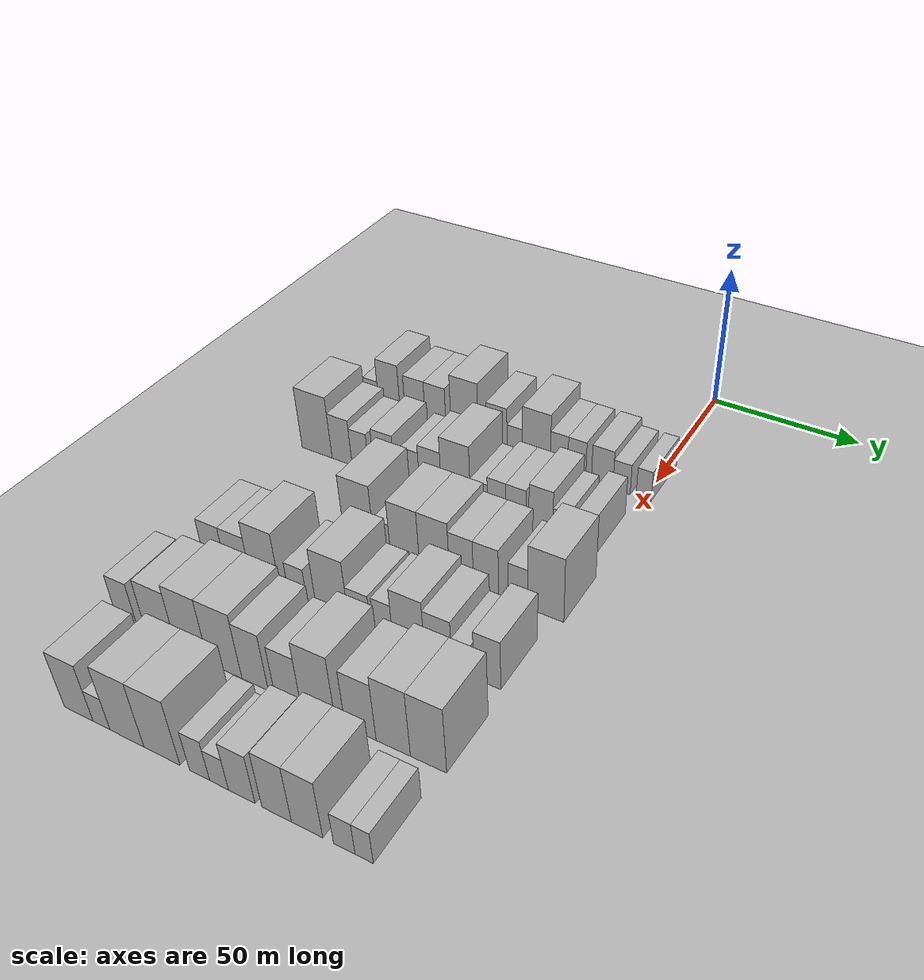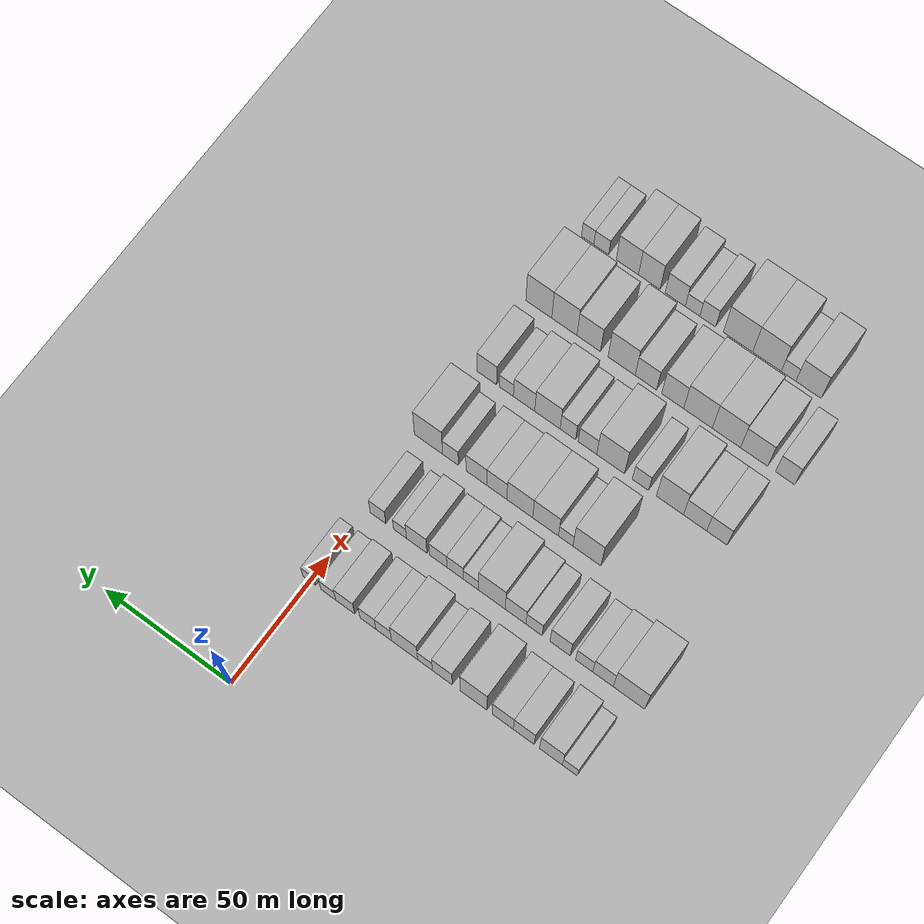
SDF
<sdf version="1.6">
 <world name="default">
  <include><name>ground_plane_1</name><uri>model://HANNAS_ground_plane</uri></include>
  <include>
   <name>ground_plane_2</name>
   <uri>model://HANNAS_ground_plane</uri>
   <pose>100 0 0  0 0 0</pose>
  </include>
  <model name="building_48">
   <static>1</static>
   <pose>50.0000 -100.1588 0 0.000000 0.000000 0.000000</pose>
   <link name="link">
    <pose>0 0 6.00 0 0 0</pose>
    <collision name="collision"><geometry><box><size>20.0000 5.5834 12.0000</size></box></geometry></collision>
    <visual name="visual">
     <cast_shadows>0</cast_shadows>
     <geometry><box><size>20.0000 5.5834 12.0000</size></box></geometry>
     <material>
      <script>
       <uri>model://HANNAS_wall/materials/scripts</uri>
       <uri>model://HANNAS_wall/materials/textures</uri>
       <name>vrc/HANNAS_wall</name>
      </script>
     </material>
    </visual>
   </link>
  </model>
  <model name="building_49">
   <static>1</static>
   <pose>50.0000 -93.0709 0 0.000000 0.000000 0.000000</pose>
   <link name="link">
    <pose>0 0 10.50 0 0 0</pose>
    <collision name="collision"><geometry><box><size>20.0000 8.5924 21.0000</size></box></geometry></collision>
    <visual name="visual">
     <cast_shadows>0</cast_shadows>
     <geometry><box><size>20.0000 8.5924 21.0000</size></box></geometry>
     <material>
      <script>
       <uri>model://HANNAS_wall/materials/scripts</uri>
       <uri>model://HANNAS_wall/materials/textures</uri>
       <name>vrc/HANNAS_wall</name>
      </script>
     </material>
    </visual>
   </link>
  </model>
  <model name="building_50">
   <static>1</static>
   <pose>50.0000 -82.8225 0 0.000000 0.000000 0.000000</pose>
   <link name="link">
    <pose>0 0 9.00 0 0 0</pose>
    <collision name="collision"><geometry><box><size>20.0000 7.9045 18.0000</size></box></geometry></collision>
    <visual name="visual">
     <cast_shadows>0</cast_shadows>
     <geometry><box><size>20.0000 7.9045 18.0000</size></box></geometry>
     <material>
      <script>
       <uri>model://HANNAS_wall/materials/scripts</uri>
       <uri>model://HANNAS_wall/materials/textures</uri>
       <name>vrc/HANNAS_wall</name>
      </script>
     </material>
    </visual>
   </link>
  </model>
  <model name="building_51">
   <static>1</static>
   <pose>50.0000 -74.8674 0 0.000000 0.000000 0.000000</pose>
   <link name="link">
    <pose>0 0 9.00 0 0 0</pose>
    <collision name="collision"><geometry><box><size>20.0000 8.0058 18.0000</size></box></geometry></collision>
    <visual name="visual">
     <cast_shadows>0</cast_shadows>
     <geometry><box><size>20.0000 8.0058 18.0000</size></box></geometry>
     <material>
      <script>
       <uri>model://HANNAS_wall/materials/scripts</uri>
       <uri>model://HANNAS_wall/materials/textures</uri>
       <name>vrc/HANNAS_wall</name>
      </script>
     </material>
    </visual>
   </link>
  </model>
  <model name="building_52">
   <static>1</static>
   <pose>50.0000 -63.7128 0 0.000000 0.000000 0.000000</pose>
   <link name="link">
    <pose>0 0 12.00 0 0 0</pose>
    <collision name="collision"><geometry><box><size>20.0000 10.3034 24.0000</size></box></geometry></collision>
    <visual name="visual">
     <cast_shadows>0</cast_shadows>
     <geometry><box><size>20.0000 10.3034 24.0000</size></box></geometry>
     <material>
      <script>
       <uri>model://HANNAS_wall/materials/scripts</uri>
       <uri>model://HANNAS_wall/materials/textures</uri>
       <name>vrc/HANNAS_wall</name>
      </script>
     </material>
    </visual>
   </link>
  </model>
  <model name="building_53">
   <static>1</static>
   <pose>50.0000 -51.7517 0 0.000000 0.000000 0.000000</pose>
   <link name="link">
    <pose>0 0 9.00 0 0 0</pose>
    <collision name="collision"><geometry><box><size>20.0000 7.6187 18.0000</size></box></geometry></collision>
    <visual name="visual">
     <cast_shadows>0</cast_shadows>
     <geometry><box><size>20.0000 7.6187 18.0000</size></box></geometry>
     <material>
      <script>
       <uri>model://HANNAS_wall/materials/scripts</uri>
       <uri>model://HANNAS_wall/materials/textures</uri>
       <name>vrc/HANNAS_wall</name>
      </script>
     </material>
    </visual>
   </link>
  </model>
  <model name="building_54">
   <static>1</static>
   <pose>50.0000 -45.1060 0 0.000000 0.000000 0.000000</pose>
   <link name="link">
    <pose>0 0 6.00 0 0 0</pose>
    <collision name="collision"><geometry><box><size>20.0000 5.6728 12.0000</size></box></geometry></collision>
    <visual name="visual">
     <cast_shadows>0</cast_shadows>
     <geometry><box><size>20.0000 5.6728 12.0000</size></box></geometry>
     <material>
      <script>
       <uri>model://HANNAS_wall/materials/scripts</uri>
       <uri>model://HANNAS_wall/materials/textures</uri>
       <name>vrc/HANNAS_wall</name>
      </script>
     </material>
    </visual>
   </link>
  </model>
  <model name="building_55">
   <static>1</static>
   <pose>50.0000 -37.2330 0 0.000000 0.000000 0.000000</pose>
   <link name="link">
    <pose>0 0 10.50 0 0 0</pose>
    <collision name="collision"><geometry><box><size>20.0000 10.0730 21.0000</size></box></geometry></collision>
    <visual name="visual">
     <cast_shadows>0</cast_shadows>
     <geometry><box><size>20.0000 10.0730 21.0000</size></box></geometry>
     <material>
      <script>
       <uri>model://HANNAS_wall/materials/scripts</uri>
       <uri>model://HANNAS_wall/materials/textures</uri>
       <name>vrc/HANNAS_wall</name>
      </script>
     </material>
    </visual>
   </link>
  </model>
  <model name="building_56">
   <static>1</static>
   <pose>50.0000 -29.1370 0 0.000000 0.000000 0.000000</pose>
   <link name="link">
    <pose>0 0 7.50 0 0 0</pose>
    <collision name="collision"><geometry><box><size>20.0000 6.1190 15.0000</size></box></geometry></collision>
    <visual name="visual">
     <cast_shadows>0</cast_shadows>
     <geometry><box><size>20.0000 6.1190 15.0000</size></box></geometry>
     <material>
      <script>
       <uri>model://HANNAS_wall/materials/scripts</uri>
       <uri>model://HANNAS_wall/materials/textures</uri>
       <name>vrc/HANNAS_wall</name>
      </script>
     </material>
    </visual>
   </link>
  </model>
  <model name="building_57">
   <static>1</static>
   <pose>50.0000 -22.9359 0 0.000000 0.000000 0.000000</pose>
   <link name="link">
    <pose>0 0 7.50 0 0 0</pose>
    <collision name="collision"><geometry><box><size>20.0000 6.2833 15.0000</size></box></geometry></collision>
    <visual name="visual">
     <cast_shadows>0</cast_shadows>
     <geometry><box><size>20.0000 6.2833 15.0000</size></box></geometry>
     <material>
      <script>
       <uri>model://HANNAS_wall/materials/scripts</uri>
       <uri>model://HANNAS_wall/materials/textures</uri>
       <name>vrc/HANNAS_wall</name>
      </script>
     </material>
    </visual>
   </link>
  </model>
  <model name="building_58">
   <static>1</static>
   <pose>50.0000 -14.0874 0 0.000000 0.000000 0.000000</pose>
   <link name="link">
    <pose>0 0 7.50 0 0 0</pose>
    <collision name="collision"><geometry><box><size>20.0000 7.4137 15.0000</size></box></geometry></collision>
    <visual name="visual">
     <cast_shadows>0</cast_shadows>
     <geometry><box><size>20.0000 7.4137 15.0000</size></box></geometry>
     <material>
      <script>
       <uri>model://HANNAS_wall/materials/scripts</uri>
       <uri>model://HANNAS_wall/materials/textures</uri>
       <name>vrc/HANNAS_wall</name>
      </script>
     </material>
    </visual>
   </link>
  </model>
  <model name="building_59">
   <static>1</static>
   <pose>50.0000 -7.4353 0 0.000000 0.000000 0.000000</pose>
   <link name="link">
    <pose>0 0 6.00 0 0 0</pose>
    <collision name="collision"><geometry><box><size>20.0000 5.8906 12.0000</size></box></geometry></collision>
    <visual name="visual">
     <cast_shadows>0</cast_shadows>
     <geometry><box><size>20.0000 5.8906 12.0000</size></box></geometry>
     <material>
      <script>
       <uri>model://HANNAS_wall/materials/scripts</uri>
       <uri>model://HANNAS_wall/materials/textures</uri>
       <name>vrc/HANNAS_wall</name>
      </script>
     </material>
    </visual>
   </link>
  </model>
  <model name="building_60">
   <static>1</static>
   <pose>50.0000 0.0227 0 0.000000 0.000000 0.000000</pose>
   <link name="link">
    <pose>0 0 6.00 0 0 0</pose>
    <collision name="collision"><geometry><box><size>20.0000 5.0254 12.0000</size></box></geometry></collision>
    <visual name="visual">
     <cast_shadows>0</cast_shadows>
     <geometry><box><size>20.0000 5.0254 12.0000</size></box></geometry>
     <material>
      <script>
       <uri>model://HANNAS_wall/materials/scripts</uri>
       <uri>model://HANNAS_wall/materials/textures</uri>
       <name>vrc/HANNAS_wall</name>
      </script>
     </material>
    </visual>
   </link>
  </model>
  <model name="building_163">
   <static>1</static>
   <pose>79.0000 -101.8950 0 0.000000 0.000000 0.000000</pose>
   <link name="link">
    <pose>0 0 12.00 0 0 0</pose>
    <collision name="collision"><geometry><box><size>20.0000 11.8603 24.0000</size></box></geometry></collision>
    <visual name="visual">
     <cast_shadows>0</cast_shadows>
     <geometry><box><size>20.0000 11.8603 24.0000</size></box></geometry>
     <material>
      <script>
       <uri>model://HANNAS_wall/materials/scripts</uri>
       <uri>model://HANNAS_wall/materials/textures</uri>
       <name>vrc/HANNAS_wall</name>
      </script>
     </material>
    </visual>
   </link>
  </model>
  <model name="building_164">
   <static>1</static>
   <pose>79.0000 -92.0670 0 0.000000 0.000000 0.000000</pose>
   <link name="link">
    <pose>0 0 9.00 0 0 0</pose>
    <collision name="collision"><geometry><box><size>20.0000 7.7956 18.0000</size></box></geometry></collision>
    <visual name="visual">
     <cast_shadows>0</cast_shadows>
     <geometry><box><size>20.0000 7.7956 18.0000</size></box></geometry>
     <material>
      <script>
       <uri>model://HANNAS_wall/materials/scripts</uri>
       <uri>model://HANNAS_wall/materials/textures</uri>
       <name>vrc/HANNAS_wall</name>
      </script>
     </material>
    </visual>
   </link>
  </model>
  <model name="building_165">
   <static>1</static>
   <pose>79.0000 -84.9122 0 0.000000 0.000000 0.000000</pose>
   <link name="link">
    <pose>0 0 7.50 0 0 0</pose>
    <collision name="collision"><geometry><box><size>20.0000 6.5140 15.0000</size></box></geometry></collision>
    <visual name="visual">
     <cast_shadows>0</cast_shadows>
     <geometry><box><size>20.0000 6.5140 15.0000</size></box></geometry>
     <material>
      <script>
       <uri>model://HANNAS_wall/materials/scripts</uri>
       <uri>model://HANNAS_wall/materials/textures</uri>
       <name>vrc/HANNAS_wall</name>
      </script>
     </material>
    </visual>
   </link>
  </model>
  <model name="building_166">
   <static>1</static>
   <pose>79.0000 -75.7726 0 0.000000 0.000000 0.000000</pose>
   <link name="link">
    <pose>0 0 9.00 0 0 0</pose>
    <collision name="collision"><geometry><box><size>20.0000 7.7652 18.0000</size></box></geometry></collision>
    <visual name="visual">
     <cast_shadows>0</cast_shadows>
     <geometry><box><size>20.0000 7.7652 18.0000</size></box></geometry>
     <material>
      <script>
       <uri>model://HANNAS_wall/materials/scripts</uri>
       <uri>model://HANNAS_wall/materials/textures</uri>
       <name>vrc/HANNAS_wall</name>
      </script>
     </material>
    </visual>
   </link>
  </model>
  <model name="building_167">
   <static>1</static>
   <pose>79.0000 -65.7779 0 0.000000 0.000000 0.000000</pose>
   <link name="link">
    <pose>0 0 7.50 0 0 0</pose>
    <collision name="collision"><geometry><box><size>20.0000 6.2242 15.0000</size></box></geometry></collision>
    <visual name="visual">
     <cast_shadows>0</cast_shadows>
     <geometry><box><size>20.0000 6.2242 15.0000</size></box></geometry>
     <material>
      <script>
       <uri>model://HANNAS_wall/materials/scripts</uri>
       <uri>model://HANNAS_wall/materials/textures</uri>
       <name>vrc/HANNAS_wall</name>
      </script>
     </material>
    </visual>
   </link>
  </model>
  <model name="building_168">
   <static>1</static>
   <pose>79.0000 -58.6753 0 0.000000 0.000000 0.000000</pose>
   <link name="link">
    <pose>0 0 9.00 0 0 0</pose>
    <collision name="collision"><geometry><box><size>20.0000 7.9810 18.0000</size></box></geometry></collision>
    <visual name="visual">
     <cast_shadows>0</cast_shadows>
     <geometry><box><size>20.0000 7.9810 18.0000</size></box></geometry>
     <material>
      <script>
       <uri>model://HANNAS_wall/materials/scripts</uri>
       <uri>model://HANNAS_wall/materials/textures</uri>
       <name>vrc/HANNAS_wall</name>
      </script>
     </material>
    </visual>
   </link>
  </model>
  <model name="building_169">
   <static>1</static>
   <pose>79.0000 -49.5389 0 0.000000 0.000000 0.000000</pose>
   <link name="link">
    <pose>0 0 12.00 0 0 0</pose>
    <collision name="collision"><geometry><box><size>20.0000 10.2919 24.0000</size></box></geometry></collision>
    <visual name="visual">
     <cast_shadows>0</cast_shadows>
     <geometry><box><size>20.0000 10.2919 24.0000</size></box></geometry>
     <material>
      <script>
       <uri>model://HANNAS_wall/materials/scripts</uri>
       <uri>model://HANNAS_wall/materials/textures</uri>
       <name>vrc/HANNAS_wall</name>
      </script>
     </material>
    </visual>
   </link>
  </model>
  <model name="building_170">
   <static>1</static>
   <pose>79.0000 -41.3933 0 0.000000 0.000000 0.000000</pose>
   <link name="link">
    <pose>0 0 6.00 0 0 0</pose>
    <collision name="collision"><geometry><box><size>20.0000 5.9991 12.0000</size></box></geometry></collision>
    <visual name="visual">
     <cast_shadows>0</cast_shadows>
     <geometry><box><size>20.0000 5.9991 12.0000</size></box></geometry>
     <material>
      <script>
       <uri>model://HANNAS_wall/materials/scripts</uri>
       <uri>model://HANNAS_wall/materials/textures</uri>
       <name>vrc/HANNAS_wall</name>
      </script>
     </material>
    </visual>
   </link>
  </model>
  <model name="building_171">
   <static>1</static>
   <pose>79.0000 -35.2212 0 0.000000 0.000000 0.000000</pose>
   <link name="link">
    <pose>0 0 7.50 0 0 0</pose>
    <collision name="collision"><geometry><box><size>20.0000 6.3452 15.0000</size></box></geometry></collision>
    <visual name="visual">
     <cast_shadows>0</cast_shadows>
     <geometry><box><size>20.0000 6.3452 15.0000</size></box></geometry>
     <material>
      <script>
       <uri>model://HANNAS_wall/materials/scripts</uri>
       <uri>model://HANNAS_wall/materials/textures</uri>
       <name>vrc/HANNAS_wall</name>
      </script>
     </material>
    </visual>
   </link>
  </model>
  <model name="building_172">
   <static>1</static>
   <pose>79.0000 -28.6570 0 0.000000 0.000000 0.000000</pose>
   <link name="link">
    <pose>0 0 7.50 0 0 0</pose>
    <collision name="collision"><geometry><box><size>20.0000 6.7831 15.0000</size></box></geometry></collision>
    <visual name="visual">
     <cast_shadows>0</cast_shadows>
     <geometry><box><size>20.0000 6.7831 15.0000</size></box></geometry>
     <material>
      <script>
       <uri>model://HANNAS_wall/materials/scripts</uri>
       <uri>model://HANNAS_wall/materials/textures</uri>
       <name>vrc/HANNAS_wall</name>
      </script>
     </material>
    </visual>
   </link>
  </model>
  <model name="building_173">
   <static>1</static>
   <pose>79.0000 -20.2485 0 0.000000 0.000000 0.000000</pose>
   <link name="link">
    <pose>0 0 9.00 0 0 0</pose>
    <collision name="collision"><geometry><box><size>20.0000 8.0341 18.0000</size></box></geometry></collision>
    <visual name="visual">
     <cast_shadows>0</cast_shadows>
     <geometry><box><size>20.0000 8.0341 18.0000</size></box></geometry>
     <material>
      <script>
       <uri>model://HANNAS_wall/materials/scripts</uri>
       <uri>model://HANNAS_wall/materials/textures</uri>
       <name>vrc/HANNAS_wall</name>
      </script>
     </material>
    </visual>
   </link>
  </model>
  <model name="building_174">
   <static>1</static>
   <pose>79.0000 -13.6729 0 0.000000 0.000000 0.000000</pose>
   <link name="link">
    <pose>0 0 6.00 0 0 0</pose>
    <collision name="collision"><geometry><box><size>20.0000 5.1171 12.0000</size></box></geometry></collision>
    <visual name="visual">
     <cast_shadows>0</cast_shadows>
     <geometry><box><size>20.0000 5.1171 12.0000</size></box></geometry>
     <material>
      <script>
       <uri>model://HANNAS_wall/materials/scripts</uri>
       <uri>model://HANNAS_wall/materials/textures</uri>
       <name>vrc/HANNAS_wall</name>
      </script>
     </material>
    </visual>
   </link>
  </model>
  <model name="building_175">
   <static>1</static>
   <pose>79.0000 -5.0325 0 0.000000 0.000000 0.000000</pose>
   <link name="link">
    <pose>0 0 7.50 0 0 0</pose>
    <collision name="collision"><geometry><box><size>20.0000 6.1637 15.0000</size></box></geometry></collision>
    <visual name="visual">
     <cast_shadows>0</cast_shadows>
     <geometry><box><size>20.0000 6.1637 15.0000</size></box></geometry>
     <material>
      <script>
       <uri>model://HANNAS_wall/materials/scripts</uri>
       <uri>model://HANNAS_wall/materials/textures</uri>
       <name>vrc/HANNAS_wall</name>
      </script>
     </material>
    </visual>
   </link>
  </model>
  <model name="building_269">
   <static>1</static>
   <pose>108.0000 -65.3028 0 0.000000 0.000000 0.000000</pose>
   <link name="link">
    <pose>0 0 12.00 0 0 0</pose>
    <collision name="collision"><geometry><box><size>20.0000 10.7787 24.0000</size></box></geometry></collision>
    <visual name="visual">
     <cast_shadows>0</cast_shadows>
     <geometry><box><size>20.0000 10.7787 24.0000</size></box></geometry>
     <material>
      <script>
       <uri>model://HANNAS_wall/materials/scripts</uri>
       <uri>model://HANNAS_wall/materials/textures</uri>
       <name>vrc/HANNAS_wall</name>
      </script>
     </material>
    </visual>
   </link>
  </model>
  <model name="building_270">
   <static>1</static>
   <pose>108.0000 -57.1104 0 0.000000 0.000000 0.000000</pose>
   <link name="link">
    <pose>0 0 6.00 0 0 0</pose>
    <collision name="collision"><geometry><box><size>20.0000 5.6061 12.0000</size></box></geometry></collision>
    <visual name="visual">
     <cast_shadows>0</cast_shadows>
     <geometry><box><size>20.0000 5.6061 12.0000</size></box></geometry>
     <material>
      <script>
       <uri>model://HANNAS_wall/materials/scripts</uri>
       <uri>model://HANNAS_wall/materials/textures</uri>
       <name>vrc/HANNAS_wall</name>
      </script>
     </material>
    </visual>
   </link>
  </model>
  <model name="building_271">
   <static>1</static>
   <pose>108.0000 -49.3049 0 0.000000 0.000000 0.000000</pose>
   <link name="link">
    <pose>0 0 10.50 0 0 0</pose>
    <collision name="collision"><geometry><box><size>20.0000 10.0048 21.0000</size></box></geometry></collision>
    <visual name="visual">
     <cast_shadows>0</cast_shadows>
     <geometry><box><size>20.0000 10.0048 21.0000</size></box></geometry>
     <material>
      <script>
       <uri>model://HANNAS_wall/materials/scripts</uri>
       <uri>model://HANNAS_wall/materials/textures</uri>
       <name>vrc/HANNAS_wall</name>
      </script>
     </material>
    </visual>
   </link>
  </model>
  <model name="building_272">
   <static>1</static>
   <pose>108.0000 -39.2423 0 0.000000 0.000000 0.000000</pose>
   <link name="link">
    <pose>0 0 10.50 0 0 0</pose>
    <collision name="collision"><geometry><box><size>20.0000 10.1203 21.0000</size></box></geometry></collision>
    <visual name="visual">
     <cast_shadows>0</cast_shadows>
     <geometry><box><size>20.0000 10.1203 21.0000</size></box></geometry>
     <material>
      <script>
       <uri>model://HANNAS_wall/materials/scripts</uri>
       <uri>model://HANNAS_wall/materials/textures</uri>
       <name>vrc/HANNAS_wall</name>
      </script>
     </material>
    </visual>
   </link>
  </model>
  <model name="building_273">
   <static>1</static>
   <pose>108.0000 -30.2172 0 0.000000 0.000000 0.000000</pose>
   <link name="link">
    <pose>0 0 9.00 0 0 0</pose>
    <collision name="collision"><geometry><box><size>20.0000 7.9299 18.0000</size></box></geometry></collision>
    <visual name="visual">
     <cast_shadows>0</cast_shadows>
     <geometry><box><size>20.0000 7.9299 18.0000</size></box></geometry>
     <material>
      <script>
       <uri>model://HANNAS_wall/materials/scripts</uri>
       <uri>model://HANNAS_wall/materials/textures</uri>
       <name>vrc/HANNAS_wall</name>
      </script>
     </material>
    </visual>
   </link>
  </model>
  <model name="building_274">
   <static>1</static>
   <pose>108.0000 -22.1798 0 0.000000 0.000000 0.000000</pose>
   <link name="link">
    <pose>0 0 9.00 0 0 0</pose>
    <collision name="collision"><geometry><box><size>20.0000 8.1447 18.0000</size></box></geometry></collision>
    <visual name="visual">
     <cast_shadows>0</cast_shadows>
     <geometry><box><size>20.0000 8.1447 18.0000</size></box></geometry>
     <material>
      <script>
       <uri>model://HANNAS_wall/materials/scripts</uri>
       <uri>model://HANNAS_wall/materials/textures</uri>
       <name>vrc/HANNAS_wall</name>
      </script>
     </material>
    </visual>
   </link>
  </model>
  <model name="building_275">
   <static>1</static>
   <pose>108.0000 -11.9690 0 0.000000 0.000000 0.000000</pose>
   <link name="link">
    <pose>0 0 7.50 0 0 0</pose>
    <collision name="collision"><geometry><box><size>20.0000 6.2770 15.0000</size></box></geometry></collision>
    <visual name="visual">
     <cast_shadows>0</cast_shadows>
     <geometry><box><size>20.0000 6.2770 15.0000</size></box></geometry>
     <material>
      <script>
       <uri>model://HANNAS_wall/materials/scripts</uri>
       <uri>model://HANNAS_wall/materials/textures</uri>
       <name>vrc/HANNAS_wall</name>
      </script>
     </material>
    </visual>
   </link>
  </model>
  <model name="building_276">
   <static>1</static>
   <pose>108.0000 -3.2616 0 0.000000 0.000000 0.000000</pose>
   <link name="link">
    <pose>0 0 12.00 0 0 0</pose>
    <collision name="collision"><geometry><box><size>20.0000 11.1378 24.0000</size></box></geometry></collision>
    <visual name="visual">
     <cast_shadows>0</cast_shadows>
     <geometry><box><size>20.0000 11.1378 24.0000</size></box></geometry>
     <material>
      <script>
       <uri>model://HANNAS_wall/materials/scripts</uri>
       <uri>model://HANNAS_wall/materials/textures</uri>
       <name>vrc/HANNAS_wall</name>
      </script>
     </material>
    </visual>
   </link>
  </model>
  <model name="building_378">
   <static>1</static>
   <pose>137.0000 -94.9725 0 0.000000 0.000000 0.000000</pose>
   <link name="link">
    <pose>0 0 9.00 0 0 0</pose>
    <collision name="collision"><geometry><box><size>20.0000 7.8466 18.0000</size></box></geometry></collision>
    <visual name="visual">
     <cast_shadows>0</cast_shadows>
     <geometry><box><size>20.0000 7.8466 18.0000</size></box></geometry>
     <material>
      <script>
       <uri>model://HANNAS_wall/materials/scripts</uri>
       <uri>model://HANNAS_wall/materials/textures</uri>
       <name>vrc/HANNAS_wall</name>
      </script>
     </material>
    </visual>
   </link>
  </model>
  <model name="building_379">
   <static>1</static>
   <pose>137.0000 -86.5911 0 0.000000 0.000000 0.000000</pose>
   <link name="link">
    <pose>0 0 9.00 0 0 0</pose>
    <collision name="collision"><geometry><box><size>20.0000 8.9162 18.0000</size></box></geometry></collision>
    <visual name="visual">
     <cast_shadows>0</cast_shadows>
     <geometry><box><size>20.0000 8.9162 18.0000</size></box></geometry>
     <material>
      <script>
       <uri>model://HANNAS_wall/materials/scripts</uri>
       <uri>model://HANNAS_wall/materials/textures</uri>
       <name>vrc/HANNAS_wall</name>
      </script>
     </material>
    </visual>
   </link>
  </model>
  <model name="building_380">
   <static>1</static>
   <pose>137.0000 -76.9125 0 0.000000 0.000000 0.000000</pose>
   <link name="link">
    <pose>0 0 12.00 0 0 0</pose>
    <collision name="collision"><geometry><box><size>20.0000 10.4410 24.0000</size></box></geometry></collision>
    <visual name="visual">
     <cast_shadows>0</cast_shadows>
     <geometry><box><size>20.0000 10.4410 24.0000</size></box></geometry>
     <material>
      <script>
       <uri>model://HANNAS_wall/materials/scripts</uri>
       <uri>model://HANNAS_wall/materials/textures</uri>
       <name>vrc/HANNAS_wall</name>
      </script>
     </material>
    </visual>
   </link>
  </model>
  <model name="building_381">
   <static>1</static>
   <pose>137.0000 -65.5252 0 0.000000 0.000000 0.000000</pose>
   <link name="link">
    <pose>0 0 7.50 0 0 0</pose>
    <collision name="collision"><geometry><box><size>20.0000 6.3335 15.0000</size></box></geometry></collision>
    <visual name="visual">
     <cast_shadows>0</cast_shadows>
     <geometry><box><size>20.0000 6.3335 15.0000</size></box></geometry>
     <material>
      <script>
       <uri>model://HANNAS_wall/materials/scripts</uri>
       <uri>model://HANNAS_wall/materials/textures</uri>
       <name>vrc/HANNAS_wall</name>
      </script>
     </material>
    </visual>
   </link>
  </model>
  <model name="building_382">
   <static>1</static>
   <pose>137.0000 -53.9409 0 0.000000 0.000000 0.000000</pose>
   <link name="link">
    <pose>0 0 12.00 0 0 0</pose>
    <collision name="collision"><geometry><box><size>20.0000 10.8350 24.0000</size></box></geometry></collision>
    <visual name="visual">
     <cast_shadows>0</cast_shadows>
     <geometry><box><size>20.0000 10.8350 24.0000</size></box></geometry>
     <material>
      <script>
       <uri>model://HANNAS_wall/materials/scripts</uri>
       <uri>model://HANNAS_wall/materials/textures</uri>
       <name>vrc/HANNAS_wall</name>
      </script>
     </material>
    </visual>
   </link>
  </model>
  <model name="building_383">
   <static>1</static>
   <pose>137.0000 -44.8855 0 0.000000 0.000000 0.000000</pose>
   <link name="link">
    <pose>0 0 7.50 0 0 0</pose>
    <collision name="collision"><geometry><box><size>20.0000 7.2759 15.0000</size></box></geometry></collision>
    <visual name="visual">
     <cast_shadows>0</cast_shadows>
     <geometry><box><size>20.0000 7.2759 15.0000</size></box></geometry>
     <material>
      <script>
       <uri>model://HANNAS_wall/materials/scripts</uri>
       <uri>model://HANNAS_wall/materials/textures</uri>
       <name>vrc/HANNAS_wall</name>
      </script>
     </material>
    </visual>
   </link>
  </model>
  <model name="building_384">
   <static>1</static>
   <pose>137.0000 -37.2133 0 0.000000 0.000000 0.000000</pose>
   <link name="link">
    <pose>0 0 7.50 0 0 0</pose>
    <collision name="collision"><geometry><box><size>20.0000 6.0686 15.0000</size></box></geometry></collision>
    <visual name="visual">
     <cast_shadows>0</cast_shadows>
     <geometry><box><size>20.0000 6.0686 15.0000</size></box></geometry>
     <material>
      <script>
       <uri>model://HANNAS_wall/materials/scripts</uri>
       <uri>model://HANNAS_wall/materials/textures</uri>
       <name>vrc/HANNAS_wall</name>
      </script>
     </material>
    </visual>
   </link>
  </model>
  <model name="building_385">
   <static>1</static>
   <pose>137.0000 -29.1659 0 0.000000 0.000000 0.000000</pose>
   <link name="link">
    <pose>0 0 10.50 0 0 0</pose>
    <collision name="collision"><geometry><box><size>20.0000 10.0261 21.0000</size></box></geometry></collision>
    <visual name="visual">
     <cast_shadows>0</cast_shadows>
     <geometry><box><size>20.0000 10.0261 21.0000</size></box></geometry>
     <material>
      <script>
       <uri>model://HANNAS_wall/materials/scripts</uri>
       <uri>model://HANNAS_wall/materials/textures</uri>
       <name>vrc/HANNAS_wall</name>
      </script>
     </material>
    </visual>
   </link>
  </model>
  <model name="building_386">
   <static>1</static>
   <pose>137.0000 -19.9301 0 0.000000 0.000000 0.000000</pose>
   <link name="link">
    <pose>0 0 9.00 0 0 0</pose>
    <collision name="collision"><geometry><box><size>20.0000 8.4456 18.0000</size></box></geometry></collision>
    <visual name="visual">
     <cast_shadows>0</cast_shadows>
     <geometry><box><size>20.0000 8.4456 18.0000</size></box></geometry>
     <material>
      <script>
       <uri>model://HANNAS_wall/materials/scripts</uri>
       <uri>model://HANNAS_wall/materials/textures</uri>
       <name>vrc/HANNAS_wall</name>
      </script>
     </material>
    </visual>
   </link>
  </model>
  <model name="building_387">
   <static>1</static>
   <pose>137.0000 -12.8511 0 0.000000 0.000000 0.000000</pose>
   <link name="link">
    <pose>0 0 6.00 0 0 0</pose>
    <collision name="collision"><geometry><box><size>20.0000 5.7123 12.0000</size></box></geometry></collision>
    <visual name="visual">
     <cast_shadows>0</cast_shadows>
     <geometry><box><size>20.0000 5.7123 12.0000</size></box></geometry>
     <material>
      <script>
       <uri>model://HANNAS_wall/materials/scripts</uri>
       <uri>model://HANNAS_wall/materials/textures</uri>
       <name>vrc/HANNAS_wall</name>
      </script>
     </material>
    </visual>
   </link>
  </model>
  <model name="building_388">
   <static>1</static>
   <pose>137.0000 -5.0248 0 0.000000 0.000000 0.000000</pose>
   <link name="link">
    <pose>0 0 9.00 0 0 0</pose>
    <collision name="collision"><geometry><box><size>20.0000 7.9403 18.0000</size></box></geometry></collision>
    <visual name="visual">
     <cast_shadows>0</cast_shadows>
     <geometry><box><size>20.0000 7.9403 18.0000</size></box></geometry>
     <material>
      <script>
       <uri>model://HANNAS_wall/materials/scripts</uri>
       <uri>model://HANNAS_wall/materials/textures</uri>
       <name>vrc/HANNAS_wall</name>
      </script>
     </material>
    </visual>
   </link>
  </model>
  <model name="building_491">
   <static>1</static>
   <pose>166.0000 -101.3327 0 0.000000 0.000000 0.000000</pose>
   <link name="link">
    <pose>0 0 9.00 0 0 0</pose>
    <collision name="collision"><geometry><box><size>20.0000 7.3626 18.0000</size></box></geometry></collision>
    <visual name="visual">
     <cast_shadows>0</cast_shadows>
     <geometry><box><size>20.0000 7.3626 18.0000</size></box></geometry>
     <material>
      <script>
       <uri>model://HANNAS_wall/materials/scripts</uri>
       <uri>model://HANNAS_wall/materials/textures</uri>
       <name>vrc/HANNAS_wall</name>
      </script>
     </material>
    </visual>
   </link>
  </model>
  <model name="building_492">
   <static>1</static>
   <pose>166.0000 -89.4224 0 0.000000 0.000000 0.000000</pose>
   <link name="link">
    <pose>0 0 10.50 0 0 0</pose>
    <collision name="collision"><geometry><box><size>20.0000 10.4581 21.0000</size></box></geometry></collision>
    <visual name="visual">
     <cast_shadows>0</cast_shadows>
     <geometry><box><size>20.0000 10.4581 21.0000</size></box></geometry>
     <material>
      <script>
       <uri>model://HANNAS_wall/materials/scripts</uri>
       <uri>model://HANNAS_wall/materials/textures</uri>
       <name>vrc/HANNAS_wall</name>
      </script>
     </material>
    </visual>
   </link>
  </model>
  <model name="building_493">
   <static>1</static>
   <pose>166.0000 -78.7296 0 0.000000 0.000000 0.000000</pose>
   <link name="link">
    <pose>0 0 12.00 0 0 0</pose>
    <collision name="collision"><geometry><box><size>20.0000 10.9273 24.0000</size></box></geometry></collision>
    <visual name="visual">
     <cast_shadows>0</cast_shadows>
     <geometry><box><size>20.0000 10.9273 24.0000</size></box></geometry>
     <material>
      <script>
       <uri>model://HANNAS_wall/materials/scripts</uri>
       <uri>model://HANNAS_wall/materials/textures</uri>
       <name>vrc/HANNAS_wall</name>
      </script>
     </material>
    </visual>
   </link>
  </model>
  <model name="building_494">
   <static>1</static>
   <pose>166.0000 -67.6883 0 0.000000 0.000000 0.000000</pose>
   <link name="link">
    <pose>0 0 12.00 0 0 0</pose>
    <collision name="collision"><geometry><box><size>20.0000 11.1554 24.0000</size></box></geometry></collision>
    <visual name="visual">
     <cast_shadows>0</cast_shadows>
     <geometry><box><size>20.0000 11.1554 24.0000</size></box></geometry>
     <material>
      <script>
       <uri>model://HANNAS_wall/materials/scripts</uri>
       <uri>model://HANNAS_wall/materials/textures</uri>
       <name>vrc/HANNAS_wall</name>
      </script>
     </material>
    </visual>
   </link>
  </model>
  <model name="building_495">
   <static>1</static>
   <pose>166.0000 -57.8158 0 0.000000 0.000000 0.000000</pose>
   <link name="link">
    <pose>0 0 10.50 0 0 0</pose>
    <collision name="collision"><geometry><box><size>20.0000 8.5896 21.0000</size></box></geometry></collision>
    <visual name="visual">
     <cast_shadows>0</cast_shadows>
     <geometry><box><size>20.0000 8.5896 21.0000</size></box></geometry>
     <material>
      <script>
       <uri>model://HANNAS_wall/materials/scripts</uri>
       <uri>model://HANNAS_wall/materials/textures</uri>
       <name>vrc/HANNAS_wall</name>
      </script>
     </material>
    </visual>
   </link>
  </model>
  <model name="building_496">
   <static>1</static>
   <pose>166.0000 -47.3326 0 0.000000 0.000000 0.000000</pose>
   <link name="link">
    <pose>0 0 9.00 0 0 0</pose>
    <collision name="collision"><geometry><box><size>20.0000 8.3768 18.0000</size></box></geometry></collision>
    <visual name="visual">
     <cast_shadows>0</cast_shadows>
     <geometry><box><size>20.0000 8.3768 18.0000</size></box></geometry>
     <material>
      <script>
       <uri>model://HANNAS_wall/materials/scripts</uri>
       <uri>model://HANNAS_wall/materials/textures</uri>
       <name>vrc/HANNAS_wall</name>
      </script>
     </material>
    </visual>
   </link>
  </model>
  <model name="building_497">
   <static>1</static>
   <pose>166.0000 -37.7788 0 0.000000 0.000000 0.000000</pose>
   <link name="link">
    <pose>0 0 12.00 0 0 0</pose>
    <collision name="collision"><geometry><box><size>20.0000 10.7309 24.0000</size></box></geometry></collision>
    <visual name="visual">
     <cast_shadows>0</cast_shadows>
     <geometry><box><size>20.0000 10.7309 24.0000</size></box></geometry>
     <material>
      <script>
       <uri>model://HANNAS_wall/materials/scripts</uri>
       <uri>model://HANNAS_wall/materials/textures</uri>
       <name>vrc/HANNAS_wall</name>
      </script>
     </material>
    </visual>
   </link>
  </model>
  <model name="building_498">
   <static>1</static>
   <pose>166.0000 -24.7575 0 0.000000 0.000000 0.000000</pose>
   <link name="link">
    <pose>0 0 10.50 0 0 0</pose>
    <collision name="collision"><geometry><box><size>20.0000 9.3116 21.0000</size></box></geometry></collision>
    <visual name="visual">
     <cast_shadows>0</cast_shadows>
     <geometry><box><size>20.0000 9.3116 21.0000</size></box></geometry>
     <material>
      <script>
       <uri>model://HANNAS_wall/materials/scripts</uri>
       <uri>model://HANNAS_wall/materials/textures</uri>
       <name>vrc/HANNAS_wall</name>
      </script>
     </material>
    </visual>
   </link>
  </model>
  <model name="building_499">
   <static>1</static>
   <pose>166.0000 -15.0674 0 0.000000 0.000000 0.000000</pose>
   <link name="link">
    <pose>0 0 12.00 0 0 0</pose>
    <collision name="collision"><geometry><box><size>20.0000 10.0687 24.0000</size></box></geometry></collision>
    <visual name="visual">
     <cast_shadows>0</cast_shadows>
     <geometry><box><size>20.0000 10.0687 24.0000</size></box></geometry>
     <material>
      <script>
       <uri>model://HANNAS_wall/materials/scripts</uri>
       <uri>model://HANNAS_wall/materials/textures</uri>
       <name>vrc/HANNAS_wall</name>
      </script>
     </material>
    </visual>
   </link>
  </model>
  <model name="building_500">
   <static>1</static>
   <pose>166.0000 -4.8383 0 0.000000 0.000000 0.000000</pose>
   <link name="link">
    <pose>0 0 12.00 0 0 0</pose>
    <collision name="collision"><geometry><box><size>20.0000 10.3894 24.0000</size></box></geometry></collision>
    <visual name="visual">
     <cast_shadows>0</cast_shadows>
     <geometry><box><size>20.0000 10.3894 24.0000</size></box></geometry>
     <material>
      <script>
       <uri>model://HANNAS_wall/materials/scripts</uri>
       <uri>model://HANNAS_wall/materials/textures</uri>
       <name>vrc/HANNAS_wall</name>
      </script>
     </material>
    </visual>
   </link>
  </model>
  <model name="building_607">
   <static>1</static>
   <pose>195.0000 -90.8689 0 0.000000 0.000000 0.000000</pose>
   <link name="link">
    <pose>0 0 10.50 0 0 0</pose>
    <collision name="collision"><geometry><box><size>20.0000 9.8144 21.0000</size></box></geometry></collision>
    <visual name="visual">
     <cast_shadows>0</cast_shadows>
     <geometry><box><size>20.0000 9.8144 21.0000</size></box></geometry>
     <material>
      <script>
       <uri>model://HANNAS_wall/materials/scripts</uri>
       <uri>model://HANNAS_wall/materials/textures</uri>
       <name>vrc/HANNAS_wall</name>
      </script>
     </material>
    </visual>
   </link>
  </model>
  <model name="building_608">
   <static>1</static>
   <pose>195.0000 -83.1302 0 0.000000 0.000000 0.000000</pose>
   <link name="link">
    <pose>0 0 6.00 0 0 0</pose>
    <collision name="collision"><geometry><box><size>20.0000 5.6630 12.0000</size></box></geometry></collision>
    <visual name="visual">
     <cast_shadows>0</cast_shadows>
     <geometry><box><size>20.0000 5.6630 12.0000</size></box></geometry>
     <material>
      <script>
       <uri>model://HANNAS_wall/materials/scripts</uri>
       <uri>model://HANNAS_wall/materials/textures</uri>
       <name>vrc/HANNAS_wall</name>
      </script>
     </material>
    </visual>
   </link>
  </model>
  <model name="building_609">
   <static>1</static>
   <pose>195.0000 -74.7326 0 0.000000 0.000000 0.000000</pose>
   <link name="link">
    <pose>0 0 12.00 0 0 0</pose>
    <collision name="collision"><geometry><box><size>20.0000 11.1322 24.0000</size></box></geometry></collision>
    <visual name="visual">
     <cast_shadows>0</cast_shadows>
     <geometry><box><size>20.0000 11.1322 24.0000</size></box></geometry>
     <material>
      <script>
       <uri>model://HANNAS_wall/materials/scripts</uri>
       <uri>model://HANNAS_wall/materials/textures</uri>
       <name>vrc/HANNAS_wall</name>
      </script>
     </material>
    </visual>
   </link>
  </model>
  <model name="building_610">
   <static>1</static>
   <pose>195.0000 -63.3943 0 0.000000 0.000000 0.000000</pose>
   <link name="link">
    <pose>0 0 12.00 0 0 0</pose>
    <collision name="collision"><geometry><box><size>20.0000 11.5445 24.0000</size></box></geometry></collision>
    <visual name="visual">
     <cast_shadows>0</cast_shadows>
     <geometry><box><size>20.0000 11.5445 24.0000</size></box></geometry>
     <material>
      <script>
       <uri>model://HANNAS_wall/materials/scripts</uri>
       <uri>model://HANNAS_wall/materials/textures</uri>
       <name>vrc/HANNAS_wall</name>
      </script>
     </material>
    </visual>
   </link>
  </model>
  <model name="building_611">
   <static>1</static>
   <pose>195.0000 -51.5230 0 0.000000 0.000000 0.000000</pose>
   <link name="link">
    <pose>0 0 7.50 0 0 0</pose>
    <collision name="collision"><geometry><box><size>20.0000 6.1981 15.0000</size></box></geometry></collision>
    <visual name="visual">
     <cast_shadows>0</cast_shadows>
     <geometry><box><size>20.0000 6.1981 15.0000</size></box></geometry>
     <material>
      <script>
       <uri>model://HANNAS_wall/materials/scripts</uri>
       <uri>model://HANNAS_wall/materials/textures</uri>
       <name>vrc/HANNAS_wall</name>
      </script>
     </material>
    </visual>
   </link>
  </model>
  <model name="building_612">
   <static>1</static>
   <pose>195.0000 -45.5426 0 0.000000 0.000000 0.000000</pose>
   <link name="link">
    <pose>0 0 6.00 0 0 0</pose>
    <collision name="collision"><geometry><box><size>20.0000 5.7625 12.0000</size></box></geometry></collision>
    <visual name="visual">
     <cast_shadows>0</cast_shadows>
     <geometry><box><size>20.0000 5.7625 12.0000</size></box></geometry>
     <material>
      <script>
       <uri>model://HANNAS_wall/materials/scripts</uri>
       <uri>model://HANNAS_wall/materials/textures</uri>
       <name>vrc/HANNAS_wall</name>
      </script>
     </material>
    </visual>
   </link>
  </model>
  <model name="building_613">
   <static>1</static>
   <pose>195.0000 -38.6740 0 0.000000 0.000000 0.000000</pose>
   <link name="link">
    <pose>0 0 9.00 0 0 0</pose>
    <collision name="collision"><geometry><box><size>20.0000 7.9747 18.0000</size></box></geometry></collision>
    <visual name="visual">
     <cast_shadows>0</cast_shadows>
     <geometry><box><size>20.0000 7.9747 18.0000</size></box></geometry>
     <material>
      <script>
       <uri>model://HANNAS_wall/materials/scripts</uri>
       <uri>model://HANNAS_wall/materials/textures</uri>
       <name>vrc/HANNAS_wall</name>
      </script>
     </material>
    </visual>
   </link>
  </model>
  <model name="building_614">
   <static>1</static>
   <pose>195.0000 -28.3767 0 0.000000 0.000000 0.000000</pose>
   <link name="link">
    <pose>0 0 10.50 0 0 0</pose>
    <collision name="collision"><geometry><box><size>20.0000 8.6198 21.0000</size></box></geometry></collision>
    <visual name="visual">
     <cast_shadows>0</cast_shadows>
     <geometry><box><size>20.0000 8.6198 21.0000</size></box></geometry>
     <material>
      <script>
       <uri>model://HANNAS_wall/materials/scripts</uri>
       <uri>model://HANNAS_wall/materials/textures</uri>
       <name>vrc/HANNAS_wall</name>
      </script>
     </material>
    </visual>
   </link>
  </model>
  <model name="building_615">
   <static>1</static>
   <pose>195.0000 -19.6125 0 0.000000 0.000000 0.000000</pose>
   <link name="link">
    <pose>0 0 10.50 0 0 0</pose>
    <collision name="collision"><geometry><box><size>20.0000 8.9087 21.0000</size></box></geometry></collision>
    <visual name="visual">
     <cast_shadows>0</cast_shadows>
     <geometry><box><size>20.0000 8.9087 21.0000</size></box></geometry>
     <material>
      <script>
       <uri>model://HANNAS_wall/materials/scripts</uri>
       <uri>model://HANNAS_wall/materials/textures</uri>
       <name>vrc/HANNAS_wall</name>
      </script>
     </material>
    </visual>
   </link>
  </model>
  <model name="building_616">
   <static>1</static>
   <pose>195.0000 -9.1743 0 0.000000 0.000000 0.000000</pose>
   <link name="link">
    <pose>0 0 6.00 0 0 0</pose>
    <collision name="collision"><geometry><box><size>20.0000 5.9675 12.0000</size></box></geometry></collision>
    <visual name="visual">
     <cast_shadows>0</cast_shadows>
     <geometry><box><size>20.0000 5.9675 12.0000</size></box></geometry>
     <material>
      <script>
       <uri>model://HANNAS_wall/materials/scripts</uri>
       <uri>model://HANNAS_wall/materials/textures</uri>
       <name>vrc/HANNAS_wall</name>
      </script>
     </material>
    </visual>
   </link>
  </model>
  <model name="building_617">
   <static>1</static>
   <pose>195.0000 -3.6971 0 0.000000 0.000000 0.000000</pose>
   <link name="link">
    <pose>0 0 6.00 0 0 0</pose>
    <collision name="collision"><geometry><box><size>20.0000 4.9870 12.0000</size></box></geometry></collision>
    <visual name="visual">
     <cast_shadows>0</cast_shadows>
     <geometry><box><size>20.0000 4.9870 12.0000</size></box></geometry>
     <material>
      <script>
       <uri>model://HANNAS_wall/materials/scripts</uri>
       <uri>model://HANNAS_wall/materials/textures</uri>
       <name>vrc/HANNAS_wall</name>
      </script>
     </material>
    </visual>
   </link>
  </model>
 </world>
</sdf>
